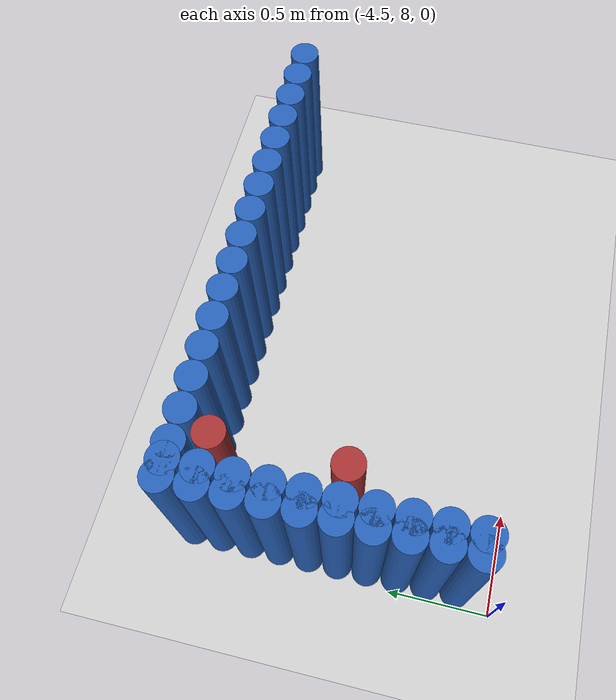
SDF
<sdf version="1.6">
 <world name="barn_world">
  <model name="ground_plane">
   <static>1</static>
   <link name="link">
    <collision name="collision">
     <geometry><plane><normal>0 0 1</normal><size>100 100</size></plane></geometry>
    </collision>
    <visual name="visual">
     <geometry><plane><normal>0 0 1</normal><size>100 100</size></plane></geometry>
     <material>
      <script><uri>file://media/materials/scripts/gazebo.material</uri><name>Gazebo/Grey</name></script>
     </material>
    </visual>
   </link>
  </model>
  <model name="unit_cylinder_146">
   <static>1</static>
   <pose>-4.3500 8.1750 0.5 0 0 0</pose>
   <link name="link">
    <collision name="collision">
     <geometry><cylinder><radius>0.075</radius><length>1</length></cylinder></geometry>
    </collision>
    <visual name="visual">
     <geometry><cylinder><radius>0.075</radius><length>1</length></cylinder></geometry>
     <material><ambient>0.152 0.379 0.72 1</ambient><diffuse>0.152 0.379 0.72 1</diffuse></material>
    </visual>
   </link>
  </model>
  <model name="unit_cylinder_147">
   <static>1</static>
   <pose>-4.3500 8.3250 0.5 0 0 0</pose>
   <link name="link">
    <collision name="collision">
     <geometry><cylinder><radius>0.075</radius><length>1</length></cylinder></geometry>
    </collision>
    <visual name="visual">
     <geometry><cylinder><radius>0.075</radius><length>1</length></cylinder></geometry>
     <material><ambient>0.152 0.379 0.72 1</ambient><diffuse>0.152 0.379 0.72 1</diffuse></material>
    </visual>
   </link>
  </model>
  <model name="unit_cylinder_148">
   <static>1</static>
   <pose>-4.3500 8.4750 0.5 0 0 0</pose>
   <link name="link">
    <collision name="collision">
     <geometry><cylinder><radius>0.075</radius><length>1</length></cylinder></geometry>
    </collision>
    <visual name="visual">
     <geometry><cylinder><radius>0.075</radius><length>1</length></cylinder></geometry>
     <material><ambient>0.152 0.379 0.72 1</ambient><diffuse>0.152 0.379 0.72 1</diffuse></material>
    </visual>
   </link>
  </model>
  <model name="unit_cylinder_149">
   <static>1</static>
   <pose>-4.3500 8.6250 0.5 0 0 0</pose>
   <link name="link">
    <collision name="collision">
     <geometry><cylinder><radius>0.075</radius><length>1</length></cylinder></geometry>
    </collision>
    <visual name="visual">
     <geometry><cylinder><radius>0.075</radius><length>1</length></cylinder></geometry>
     <material><ambient>0.152 0.379 0.72 1</ambient><diffuse>0.152 0.379 0.72 1</diffuse></material>
    </visual>
   </link>
  </model>
  <model name="unit_cylinder_150">
   <static>1</static>
   <pose>-4.3500 8.7750 0.5 0 0 0</pose>
   <link name="link">
    <collision name="collision">
     <geometry><cylinder><radius>0.075</radius><length>1</length></cylinder></geometry>
    </collision>
    <visual name="visual">
     <geometry><cylinder><radius>0.075</radius><length>1</length></cylinder></geometry>
     <material><ambient>0.152 0.379 0.72 1</ambient><diffuse>0.152 0.379 0.72 1</diffuse></material>
    </visual>
   </link>
  </model>
  <model name="unit_cylinder_151">
   <static>1</static>
   <pose>-4.3500 8.9250 0.5 0 0 0</pose>
   <link name="link">
    <collision name="collision">
     <geometry><cylinder><radius>0.075</radius><length>1</length></cylinder></geometry>
    </collision>
    <visual name="visual">
     <geometry><cylinder><radius>0.075</radius><length>1</length></cylinder></geometry>
     <material><ambient>0.152 0.379 0.72 1</ambient><diffuse>0.152 0.379 0.72 1</diffuse></material>
    </visual>
   </link>
  </model>
  <model name="unit_cylinder_152">
   <static>1</static>
   <pose>-4.3500 9.0750 0.5 0 0 0</pose>
   <link name="link">
    <collision name="collision">
     <geometry><cylinder><radius>0.075</radius><length>1</length></cylinder></geometry>
    </collision>
    <visual name="visual">
     <geometry><cylinder><radius>0.075</radius><length>1</length></cylinder></geometry>
     <material><ambient>0.152 0.379 0.72 1</ambient><diffuse>0.152 0.379 0.72 1</diffuse></material>
    </visual>
   </link>
  </model>
  <model name="unit_cylinder_153">
   <static>1</static>
   <pose>-4.3500 9.2250 0.5 0 0 0</pose>
   <link name="link">
    <collision name="collision">
     <geometry><cylinder><radius>0.075</radius><length>1</length></cylinder></geometry>
    </collision>
    <visual name="visual">
     <geometry><cylinder><radius>0.075</radius><length>1</length></cylinder></geometry>
     <material><ambient>0.152 0.379 0.72 1</ambient><diffuse>0.152 0.379 0.72 1</diffuse></material>
    </visual>
   </link>
  </model>
  <model name="unit_cylinder_154">
   <static>1</static>
   <pose>-4.3500 9.3750 0.5 0 0 0</pose>
   <link name="link">
    <collision name="collision">
     <geometry><cylinder><radius>0.075</radius><length>1</length></cylinder></geometry>
    </collision>
    <visual name="visual">
     <geometry><cylinder><radius>0.075</radius><length>1</length></cylinder></geometry>
     <material><ambient>0.152 0.379 0.72 1</ambient><diffuse>0.152 0.379 0.72 1</diffuse></material>
    </visual>
   </link>
  </model>
  <model name="unit_cylinder_155">
   <static>1</static>
   <pose>-4.3500 9.5250 0.5 0 0 0</pose>
   <link name="link">
    <collision name="collision">
     <geometry><cylinder><radius>0.075</radius><length>1</length></cylinder></geometry>
    </collision>
    <visual name="visual">
     <geometry><cylinder><radius>0.075</radius><length>1</length></cylinder></geometry>
     <material><ambient>0.152 0.379 0.72 1</ambient><diffuse>0.152 0.379 0.72 1</diffuse></material>
    </visual>
   </link>
  </model>
  <model name="unit_cylinder_157">
   <static>1</static>
   <pose>-4.2000 8.7750 0.5 0 0 0</pose>
   <link name="link">
    <collision name="collision">
     <geometry><cylinder><radius>0.075</radius><length>1</length></cylinder></geometry>
    </collision>
    <visual name="visual">
     <geometry><cylinder><radius>0.075</radius><length>1</length></cylinder></geometry>
     <material><ambient>0.648 0.192 0.192 1</ambient><diffuse>0.648 0.192 0.192 1</diffuse></material>
    </visual>
   </link>
  </model>
  <model name="unit_cylinder_158">
   <static>1</static>
   <pose>-4.2000 9.3750 0.5 0 0 0</pose>
   <link name="link">
    <collision name="collision">
     <geometry><cylinder><radius>0.075</radius><length>1</length></cylinder></geometry>
    </collision>
    <visual name="visual">
     <geometry><cylinder><radius>0.075</radius><length>1</length></cylinder></geometry>
     <material><ambient>0.648 0.192 0.192 1</ambient><diffuse>0.648 0.192 0.192 1</diffuse></material>
    </visual>
   </link>
  </model>
  <model name="unit_cylinder_225">
   <static>1</static>
   <pose>-2.0250 9.5250 0.5 0 0 0</pose>
   <link name="link">
    <collision name="collision">
     <geometry><cylinder><radius>0.075</radius><length>1</length></cylinder></geometry>
    </collision>
    <visual name="visual">
     <geometry><cylinder><radius>0.075</radius><length>1</length></cylinder></geometry>
     <material><ambient>0.152 0.379 0.72 1</ambient><diffuse>0.152 0.379 0.72 1</diffuse></material>
    </visual>
   </link>
  </model>
  <model name="unit_cylinder_226">
   <static>1</static>
   <pose>-2.1750 9.5250 0.5 0 0 0</pose>
   <link name="link">
    <collision name="collision">
     <geometry><cylinder><radius>0.075</radius><length>1</length></cylinder></geometry>
    </collision>
    <visual name="visual">
     <geometry><cylinder><radius>0.075</radius><length>1</length></cylinder></geometry>
     <material><ambient>0.152 0.379 0.72 1</ambient><diffuse>0.152 0.379 0.72 1</diffuse></material>
    </visual>
   </link>
  </model>
  <model name="unit_cylinder_227">
   <static>1</static>
   <pose>-2.3250 9.5250 0.5 0 0 0</pose>
   <link name="link">
    <collision name="collision">
     <geometry><cylinder><radius>0.075</radius><length>1</length></cylinder></geometry>
    </collision>
    <visual name="visual">
     <geometry><cylinder><radius>0.075</radius><length>1</length></cylinder></geometry>
     <material><ambient>0.152 0.379 0.72 1</ambient><diffuse>0.152 0.379 0.72 1</diffuse></material>
    </visual>
   </link>
  </model>
  <model name="unit_cylinder_228">
   <static>1</static>
   <pose>-2.4750 9.5250 0.5 0 0 0</pose>
   <link name="link">
    <collision name="collision">
     <geometry><cylinder><radius>0.075</radius><length>1</length></cylinder></geometry>
    </collision>
    <visual name="visual">
     <geometry><cylinder><radius>0.075</radius><length>1</length></cylinder></geometry>
     <material><ambient>0.152 0.379 0.72 1</ambient><diffuse>0.152 0.379 0.72 1</diffuse></material>
    </visual>
   </link>
  </model>
  <model name="unit_cylinder_229">
   <static>1</static>
   <pose>-2.6250 9.5250 0.5 0 0 0</pose>
   <link name="link">
    <collision name="collision">
     <geometry><cylinder><radius>0.075</radius><length>1</length></cylinder></geometry>
    </collision>
    <visual name="visual">
     <geometry><cylinder><radius>0.075</radius><length>1</length></cylinder></geometry>
     <material><ambient>0.152 0.379 0.72 1</ambient><diffuse>0.152 0.379 0.72 1</diffuse></material>
    </visual>
   </link>
  </model>
  <model name="unit_cylinder_230">
   <static>1</static>
   <pose>-2.7750 9.5250 0.5 0 0 0</pose>
   <link name="link">
    <collision name="collision">
     <geometry><cylinder><radius>0.075</radius><length>1</length></cylinder></geometry>
    </collision>
    <visual name="visual">
     <geometry><cylinder><radius>0.075</radius><length>1</length></cylinder></geometry>
     <material><ambient>0.152 0.379 0.72 1</ambient><diffuse>0.152 0.379 0.72 1</diffuse></material>
    </visual>
   </link>
  </model>
  <model name="unit_cylinder_231">
   <static>1</static>
   <pose>-2.9250 9.5250 0.5 0 0 0</pose>
   <link name="link">
    <collision name="collision">
     <geometry><cylinder><radius>0.075</radius><length>1</length></cylinder></geometry>
    </collision>
    <visual name="visual">
     <geometry><cylinder><radius>0.075</radius><length>1</length></cylinder></geometry>
     <material><ambient>0.152 0.379 0.72 1</ambient><diffuse>0.152 0.379 0.72 1</diffuse></material>
    </visual>
   </link>
  </model>
  <model name="unit_cylinder_232">
   <static>1</static>
   <pose>-3.0750 9.5250 0.5 0 0 0</pose>
   <link name="link">
    <collision name="collision">
     <geometry><cylinder><radius>0.075</radius><length>1</length></cylinder></geometry>
    </collision>
    <visual name="visual">
     <geometry><cylinder><radius>0.075</radius><length>1</length></cylinder></geometry>
     <material><ambient>0.152 0.379 0.72 1</ambient><diffuse>0.152 0.379 0.72 1</diffuse></material>
    </visual>
   </link>
  </model>
  <model name="unit_cylinder_233">
   <static>1</static>
   <pose>-3.2250 9.5250 0.5 0 0 0</pose>
   <link name="link">
    <collision name="collision">
     <geometry><cylinder><radius>0.075</radius><length>1</length></cylinder></geometry>
    </collision>
    <visual name="visual">
     <geometry><cylinder><radius>0.075</radius><length>1</length></cylinder></geometry>
     <material><ambient>0.152 0.379 0.72 1</ambient><diffuse>0.152 0.379 0.72 1</diffuse></material>
    </visual>
   </link>
  </model>
  <model name="unit_cylinder_234">
   <static>1</static>
   <pose>-3.3750 9.5250 0.5 0 0 0</pose>
   <link name="link">
    <collision name="collision">
     <geometry><cylinder><radius>0.075</radius><length>1</length></cylinder></geometry>
    </collision>
    <visual name="visual">
     <geometry><cylinder><radius>0.075</radius><length>1</length></cylinder></geometry>
     <material><ambient>0.152 0.379 0.72 1</ambient><diffuse>0.152 0.379 0.72 1</diffuse></material>
    </visual>
   </link>
  </model>
  <model name="unit_cylinder_235">
   <static>1</static>
   <pose>-3.5250 9.5250 0.5 0 0 0</pose>
   <link name="link">
    <collision name="collision">
     <geometry><cylinder><radius>0.075</radius><length>1</length></cylinder></geometry>
    </collision>
    <visual name="visual">
     <geometry><cylinder><radius>0.075</radius><length>1</length></cylinder></geometry>
     <material><ambient>0.152 0.379 0.72 1</ambient><diffuse>0.152 0.379 0.72 1</diffuse></material>
    </visual>
   </link>
  </model>
  <model name="unit_cylinder_236">
   <static>1</static>
   <pose>-3.6750 9.5250 0.5 0 0 0</pose>
   <link name="link">
    <collision name="collision">
     <geometry><cylinder><radius>0.075</radius><length>1</length></cylinder></geometry>
    </collision>
    <visual name="visual">
     <geometry><cylinder><radius>0.075</radius><length>1</length></cylinder></geometry>
     <material><ambient>0.152 0.379 0.72 1</ambient><diffuse>0.152 0.379 0.72 1</diffuse></material>
    </visual>
   </link>
  </model>
  <model name="unit_cylinder_237">
   <static>1</static>
   <pose>-3.8250 9.5250 0.5 0 0 0</pose>
   <link name="link">
    <collision name="collision">
     <geometry><cylinder><radius>0.075</radius><length>1</length></cylinder></geometry>
    </collision>
    <visual name="visual">
     <geometry><cylinder><radius>0.075</radius><length>1</length></cylinder></geometry>
     <material><ambient>0.152 0.379 0.72 1</ambient><diffuse>0.152 0.379 0.72 1</diffuse></material>
    </visual>
   </link>
  </model>
  <model name="unit_cylinder_238">
   <static>1</static>
   <pose>-3.9750 9.5250 0.5 0 0 0</pose>
   <link name="link">
    <collision name="collision">
     <geometry><cylinder><radius>0.075</radius><length>1</length></cylinder></geometry>
    </collision>
    <visual name="visual">
     <geometry><cylinder><radius>0.075</radius><length>1</length></cylinder></geometry>
     <material><ambient>0.152 0.379 0.72 1</ambient><diffuse>0.152 0.379 0.72 1</diffuse></material>
    </visual>
   </link>
  </model>
  <model name="unit_cylinder_239">
   <static>1</static>
   <pose>-4.1250 9.5250 0.5 0 0 0</pose>
   <link name="link">
    <collision name="collision">
     <geometry><cylinder><radius>0.075</radius><length>1</length></cylinder></geometry>
    </collision>
    <visual name="visual">
     <geometry><cylinder><radius>0.075</radius><length>1</length></cylinder></geometry>
     <material><ambient>0.152 0.379 0.72 1</ambient><diffuse>0.152 0.379 0.72 1</diffuse></material>
    </visual>
   </link>
  </model>
  <model name="unit_cylinder_240">
   <static>1</static>
   <pose>-4.2750 9.5250 0.5 0 0 0</pose>
   <link name="link">
    <collision name="collision">
     <geometry><cylinder><radius>0.075</radius><length>1</length></cylinder></geometry>
    </collision>
    <visual name="visual">
     <geometry><cylinder><radius>0.075</radius><length>1</length></cylinder></geometry>
     <material><ambient>0.152 0.379 0.72 1</ambient><diffuse>0.152 0.379 0.72 1</diffuse></material>
    </visual>
   </link>
  </model>
  <model name="unit_cylinder_241">
   <static>1</static>
   <pose>-4.4250 9.5250 0.5 0 0 0</pose>
   <link name="link">
    <collision name="collision">
     <geometry><cylinder><radius>0.075</radius><length>1</length></cylinder></geometry>
    </collision>
    <visual name="visual">
     <geometry><cylinder><radius>0.075</radius><length>1</length></cylinder></geometry>
     <material><ambient>0.152 0.379 0.72 1</ambient><diffuse>0.152 0.379 0.72 1</diffuse></material>
    </visual>
   </link>
  </model>
  <model name="unit_cylinder_283">
   <static>1</static>
   <pose>-4.4250 8.1750 0.5 0 0 0</pose>
   <link name="link">
    <collision name="collision">
     <geometry><cylinder><radius>0.075</radius><length>1</length></cylinder></geometry>
    </collision>
    <visual name="visual">
     <geometry><cylinder><radius>0.075</radius><length>1</length></cylinder></geometry>
     <material><ambient>0.152 0.379 0.72 1</ambient><diffuse>0.152 0.379 0.72 1</diffuse></material>
    </visual>
   </link>
  </model>
  <model name="unit_cylinder_285">
   <static>1</static>
   <pose>-4.4250 8.3250 0.5 0 0 0</pose>
   <link name="link">
    <collision name="collision">
     <geometry><cylinder><radius>0.075</radius><length>1</length></cylinder></geometry>
    </collision>
    <visual name="visual">
     <geometry><cylinder><radius>0.075</radius><length>1</length></cylinder></geometry>
     <material><ambient>0.152 0.379 0.72 1</ambient><diffuse>0.152 0.379 0.72 1</diffuse></material>
    </visual>
   </link>
  </model>
  <model name="unit_cylinder_287">
   <static>1</static>
   <pose>-4.4250 8.4750 0.5 0 0 0</pose>
   <link name="link">
    <collision name="collision">
     <geometry><cylinder><radius>0.075</radius><length>1</length></cylinder></geometry>
    </collision>
    <visual name="visual">
     <geometry><cylinder><radius>0.075</radius><length>1</length></cylinder></geometry>
     <material><ambient>0.152 0.379 0.72 1</ambient><diffuse>0.152 0.379 0.72 1</diffuse></material>
    </visual>
   </link>
  </model>
  <model name="unit_cylinder_289">
   <static>1</static>
   <pose>-4.4250 8.6250 0.5 0 0 0</pose>
   <link name="link">
    <collision name="collision">
     <geometry><cylinder><radius>0.075</radius><length>1</length></cylinder></geometry>
    </collision>
    <visual name="visual">
     <geometry><cylinder><radius>0.075</radius><length>1</length></cylinder></geometry>
     <material><ambient>0.152 0.379 0.72 1</ambient><diffuse>0.152 0.379 0.72 1</diffuse></material>
    </visual>
   </link>
  </model>
  <model name="unit_cylinder_291">
   <static>1</static>
   <pose>-4.4250 8.7750 0.5 0 0 0</pose>
   <link name="link">
    <collision name="collision">
     <geometry><cylinder><radius>0.075</radius><length>1</length></cylinder></geometry>
    </collision>
    <visual name="visual">
     <geometry><cylinder><radius>0.075</radius><length>1</length></cylinder></geometry>
     <material><ambient>0.152 0.379 0.72 1</ambient><diffuse>0.152 0.379 0.72 1</diffuse></material>
    </visual>
   </link>
  </model>
  <model name="unit_cylinder_293">
   <static>1</static>
   <pose>-4.4250 8.9250 0.5 0 0 0</pose>
   <link name="link">
    <collision name="collision">
     <geometry><cylinder><radius>0.075</radius><length>1</length></cylinder></geometry>
    </collision>
    <visual name="visual">
     <geometry><cylinder><radius>0.075</radius><length>1</length></cylinder></geometry>
     <material><ambient>0.152 0.379 0.72 1</ambient><diffuse>0.152 0.379 0.72 1</diffuse></material>
    </visual>
   </link>
  </model>
  <model name="unit_cylinder_295">
   <static>1</static>
   <pose>-4.4250 9.0750 0.5 0 0 0</pose>
   <link name="link">
    <collision name="collision">
     <geometry><cylinder><radius>0.075</radius><length>1</length></cylinder></geometry>
    </collision>
    <visual name="visual">
     <geometry><cylinder><radius>0.075</radius><length>1</length></cylinder></geometry>
     <material><ambient>0.152 0.379 0.72 1</ambient><diffuse>0.152 0.379 0.72 1</diffuse></material>
    </visual>
   </link>
  </model>
  <model name="unit_cylinder_297">
   <static>1</static>
   <pose>-4.4250 9.2250 0.5 0 0 0</pose>
   <link name="link">
    <collision name="collision">
     <geometry><cylinder><radius>0.075</radius><length>1</length></cylinder></geometry>
    </collision>
    <visual name="visual">
     <geometry><cylinder><radius>0.075</radius><length>1</length></cylinder></geometry>
     <material><ambient>0.152 0.379 0.72 1</ambient><diffuse>0.152 0.379 0.72 1</diffuse></material>
    </visual>
   </link>
  </model>
  <model name="unit_cylinder_299">
   <static>1</static>
   <pose>-4.4250 9.3750 0.5 0 0 0</pose>
   <link name="link">
    <collision name="collision">
     <geometry><cylinder><radius>0.075</radius><length>1</length></cylinder></geometry>
    </collision>
    <visual name="visual">
     <geometry><cylinder><radius>0.075</radius><length>1</length></cylinder></geometry>
     <material><ambient>0.152 0.379 0.72 1</ambient><diffuse>0.152 0.379 0.72 1</diffuse></material>
    </visual>
   </link>
  </model>
 </world>
</sdf>
